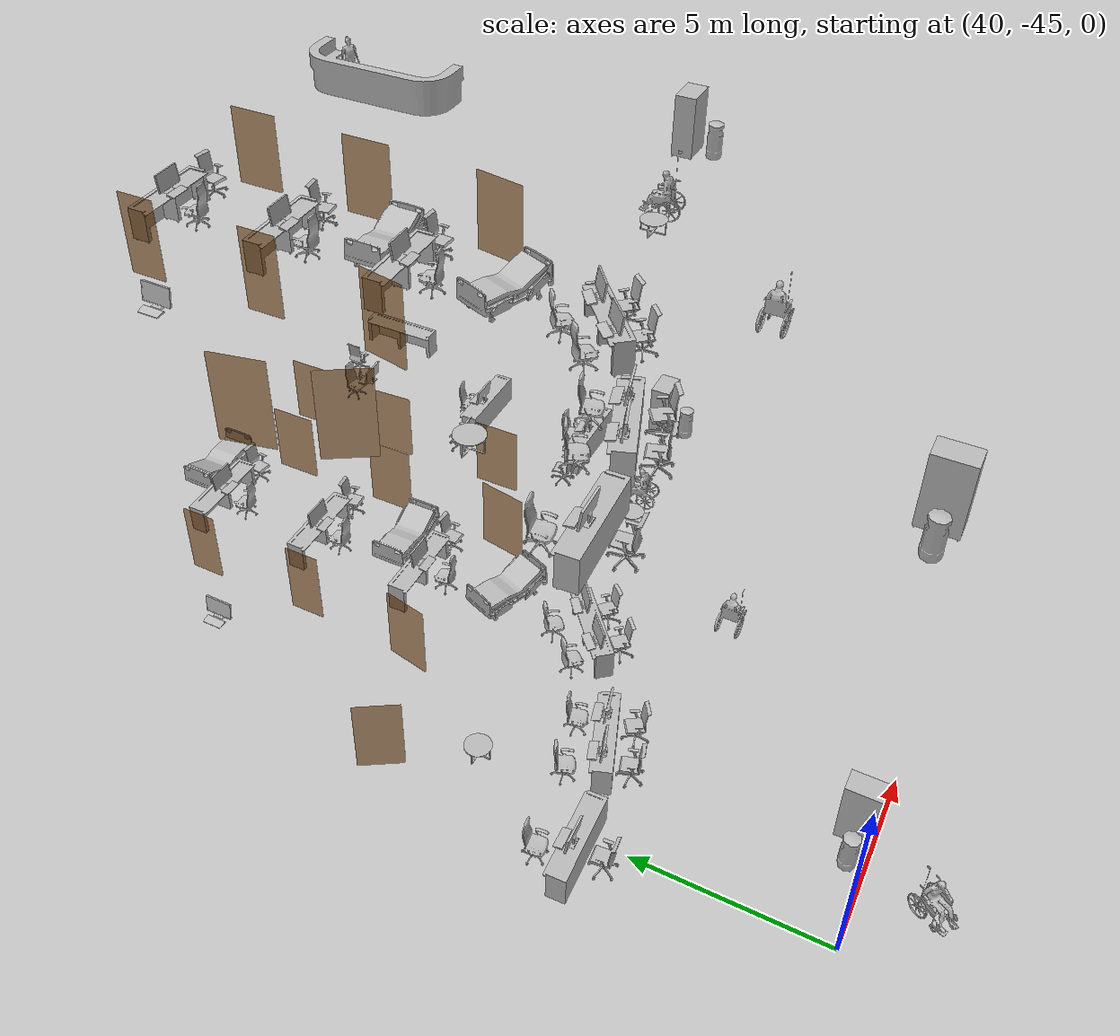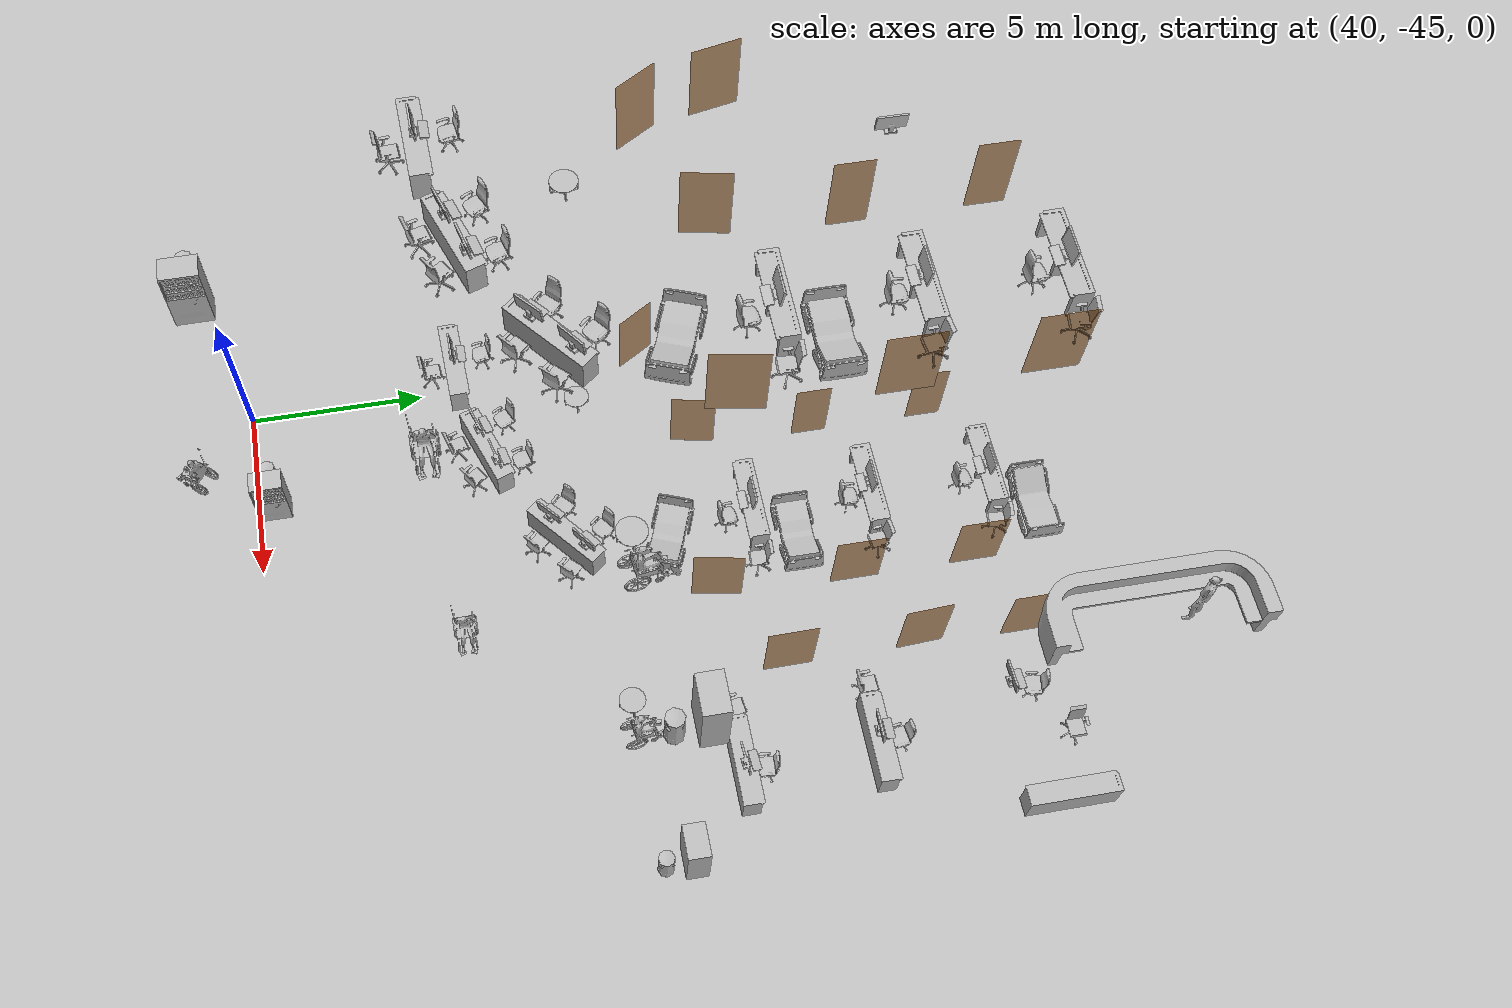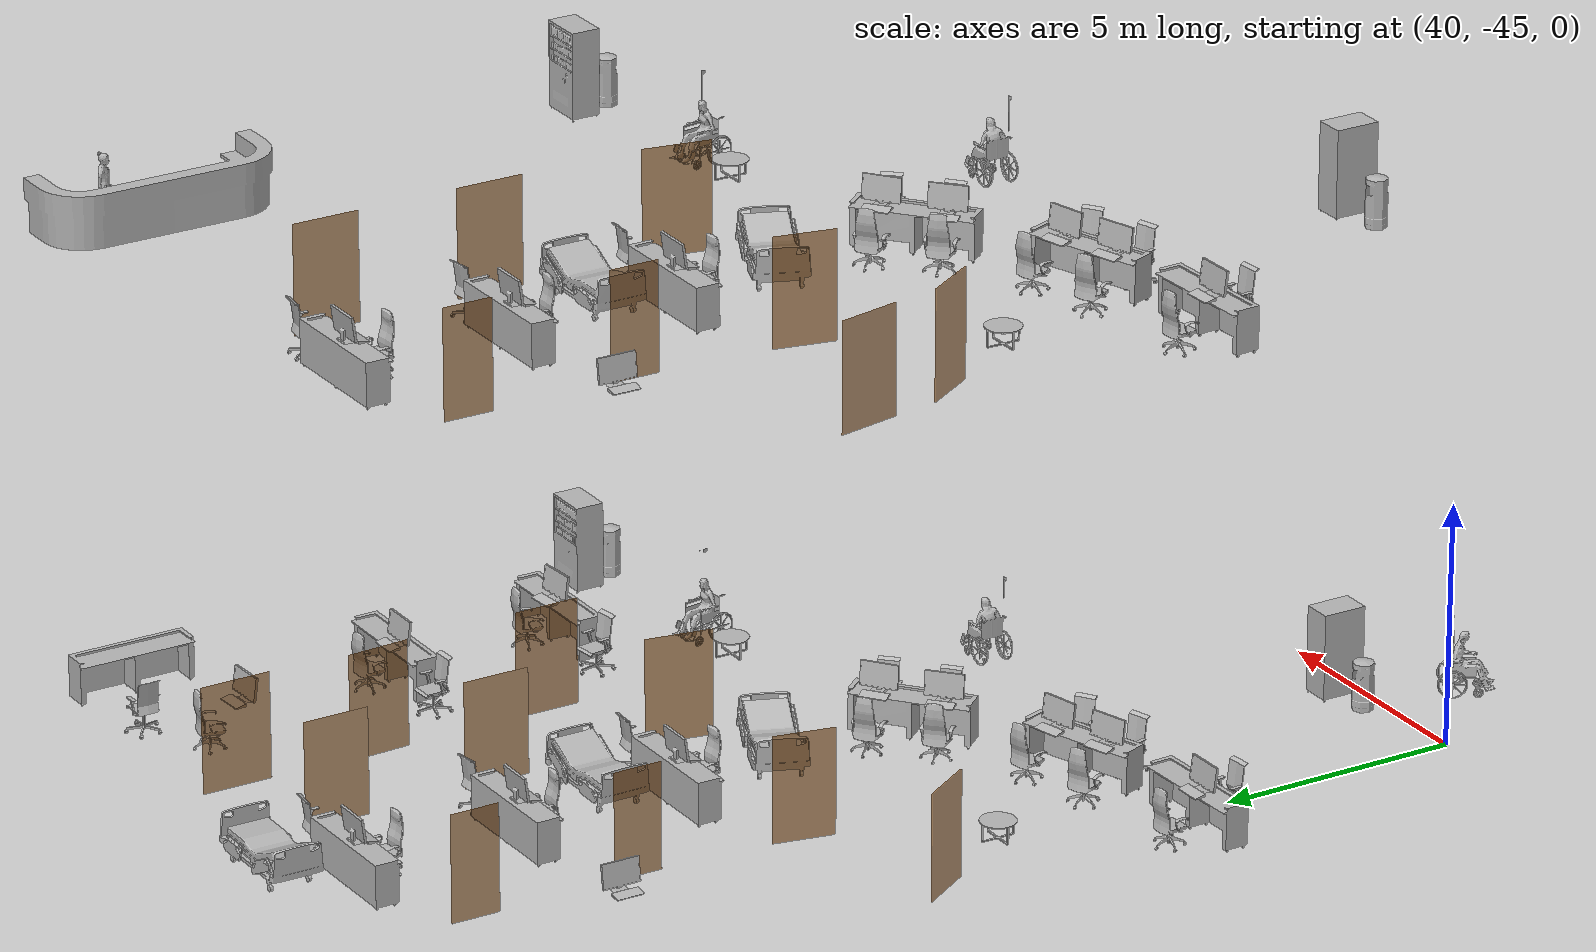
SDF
<sdf version="1.7">
 <world name="sim_world">
  <include>
   <name>OpenRobotics/CoffeeTable_2</name>
   <uri>model://CoffeeTable</uri>
   <pose>50.619145417483985 -35.45603246029002 0.0 0 0 1.5708</pose>
   <static>True</static>
  </include>
  <include>
   <name>OpenRobotics/CoffeeTable_3</name>
   <uri>model://CoffeeTable</uri>
   <pose>40.95399792315684 -35.49049267335875 0.0 0 0 1.5708</pose>
   <static>True</static>
  </include>
  <include>
   <name>OpenRobotics/CGMVanguard_6</name>
   <uri>model://CGMVanguard</uri>
   <pose>46.09093881004581 -33.67223183723706 0.0 0 0 2.7684</pose>
   <static>True</static>
  </include>
  <include>
   <name>OpenRobotics/CGMVanguard_7</name>
   <uri>model://CGMVanguard</uri>
   <pose>46.597019345409834 -30.06510903426794 0.0 0 0 3.1416</pose>
   <static>True</static>
  </include>
  <include>
   <name>OpenRobotics/CGMVanguard_8</name>
   <uri>model://CGMVanguard</uri>
   <pose>46.58625052882586 -23.184696742433005 0.0 0 0 -0.0029</pose>
   <static>True</static>
  </include>
  <include>
   <name>OpenRobotics/NurseTable_4</name>
   <uri>model://NurseTable</uri>
   <pose>42.41287642782974 -38.32261066882046 0.0 0 0 -2.8065</pose>
   <static>True</static>
  </include>
  <include>
   <name>OpenRobotics/NurseTable_5</name>
   <uri>model://NurseTable</uri>
   <pose>45.57325487481255 -36.488277373947184 0.0 0 0 -2.4507</pose>
   <static>True</static>
  </include>
  <include>
   <name>OpenRobotics/NurseTable_10</name>
   <uri>model://NurseTable</uri>
   <pose>45.42833352563367 -24.266101303796027 0.0 0 0 0.0072</pose>
   <static>True</static>
  </include>
  <include>
   <name>OpenRobotics/NurseTable_11</name>
   <uri>model://NurseTable</uri>
   <pose>45.48877350871124 -27.712607207415125 0.0 0 0 0.0098</pose>
   <static>True</static>
  </include>
  <include>
   <name>OpenRobotics/NurseTable_12</name>
   <uri>model://NurseTable</uri>
   <pose>45.413203338333176 -31.140859966924374 0.0 0 0 0.0034</pose>
   <static>True</static>
  </include>
  <include>
   <name>OpenRobotics/NurseTable_34</name>
   <uri>model://NurseTable</uri>
   <pose>52.92905657474717 -32.91938386985119 0.0 0 0 3.1416</pose>
   <static>True</static>
  </include>
  <include>
   <name>OpenRobotics/NurseTable_35</name>
   <uri>model://NurseTable</uri>
   <pose>52.90471904926738 -29.283239106188248 0.0 0 0 3.1416</pose>
   <static>True</static>
  </include>
  <include>
   <name>OpenRobotics/NurseTable_36</name>
   <uri>model://NurseTable</uri>
   <pose>55.15445944386759 -24.680296911657265 0.0 0 0 -1.5708</pose>
   <static>True</static>
  </include>
  <include>
   <name>OpenRobotics/NurseTable_40</name>
   <uri>model://NurseTable</uri>
   <pose>39.41238798507753 -38.948251990308094 0.0 0 0 -3.1045</pose>
   <static>True</static>
  </include>
  <include>
   <name>OpenRobotics/DeskChair_33</name>
   <uri>model://DeskChair</uri>
   <pose>45.560897657782434 -25.010738048536616 0.0 0 0 1.6647</pose>
   <static>True</static>
  </include>
  <include>
   <name>OpenRobotics/DeskChair_34</name>
   <uri>model://DeskChair</uri>
   <pose>45.59188492750283 -28.368885812084173 0.0 0 0 1.5708</pose>
   <static>True</static>
  </include>
  <include>
   <name>OpenRobotics/DeskChair_35</name>
   <uri>model://DeskChair</uri>
   <pose>45.6332371831853 -31.892388754278706 0.0 0 0 1.6796</pose>
   <static>True</static>
  </include>
  <include>
   <name>OpenRobotics/DeskChair_39</name>
   <uri>model://DeskChair</uri>
   <pose>39.040917657013225 -38.05072497211649 0.0 0 0 -1.4389</pose>
   <static>True</static>
  </include>
  <include>
   <name>OpenRobotics/DeskChair_40</name>
   <uri>model://DeskChair</uri>
   <pose>41.386446675127914 -37.668405061343826 0.0 0 0 -1.1243</pose>
   <static>True</static>
  </include>
  <include>
   <name>OpenRobotics/DeskChair_41</name>
   <uri>model://DeskChair</uri>
   <pose>42.83304872889508 -37.317099342333016 0.0 0 0 -1.3139</pose>
   <static>True</static>
  </include>
  <include>
   <name>OpenRobotics/DeskChair_42</name>
   <uri>model://DeskChair</uri>
   <pose>44.517291642629175 -36.3664820583824 0.0 0 0 -0.786</pose>
   <static>True</static>
  </include>
  <include>
   <name>OpenRobotics/DeskChair_43</name>
   <uri>model://DeskChair</uri>
   <pose>45.416245529018155 -35.38485058266993 0.0 0 0 -0.9053</pose>
   <static>True</static>
  </include>
  <include>
   <name>OpenRobotics/DeskChair_44</name>
   <uri>model://DeskChair</uri>
   <pose>53.06363986000543 -32.26894734817894 0.0 0 0 -1.6575</pose>
   <static>True</static>
  </include>
  <include>
   <name>OpenRobotics/DeskChair_45</name>
   <uri>model://DeskChair</uri>
   <pose>52.856986269758906 -28.629518095457893 0.0 0 0 -1.4394</pose>
   <static>True</static>
  </include>
  <include>
   <name>OpenRobotics/DeskChair_48</name>
   <uri>model://DeskChair</uri>
   <pose>52.04628283527561 -24.736860120764607 0.0 0 0 -1.7281</pose>
   <static>True</static>
  </include>
  <include>
   <name>OpenRobotics/OfficeChairGrey_6</name>
   <uri>model://OfficeChairGrey</uri>
   <pose>39.44014460982274 -39.483704472904925 0.0 0 0 -3.0604</pose>
   <static>True</static>
  </include>
  <include>
   <name>OpenRobotics/OfficeChairGrey_7</name>
   <uri>model://OfficeChairGrey</uri>
   <pose>42.04708665051348 -39.02888350448063 0.0 0 0 -2.8514</pose>
   <static>True</static>
  </include>
  <include>
   <name>OpenRobotics/OfficeChairGrey_8</name>
   <uri>model://OfficeChairGrey</uri>
   <pose>43.168605053651824 -38.666755124802926 0.0 0 0 -2.5536</pose>
   <static>True</static>
  </include>
  <include>
   <name>OpenRobotics/OfficeChairGrey_9</name>
   <uri>model://OfficeChairGrey</uri>
   <pose>45.541486865889816 -37.19848082766051 0.0 0 0 -2.4327</pose>
   <static>True</static>
  </include>
  <include>
   <name>OpenRobotics/OfficeChairGrey_10</name>
   <uri>model://OfficeChairGrey</uri>
   <pose>46.48443136802435 -36.41084958270839 0.0 0 0 -2.3371</pose>
   <static>True</static>
  </include>
  <include>
   <name>OpenRobotics/OfficeChairGrey_11</name>
   <uri>model://OfficeChairGrey</uri>
   <pose>53.49544248298147 -24.008457367024366 0.0 0 0 1.5708</pose>
   <static>True</static>
  </include>
  <include>
   <name>OpenRobotics/OfficeChairGrey_17</name>
   <uri>model://OfficeChairGrey</uri>
   <pose>47.03910618822357 -24.49658090073461 0.0 0 0 -0.1276</pose>
   <static>True</static>
  </include>
  <include>
   <name>OpenRobotics/OfficeChairGrey_18</name>
   <uri>model://OfficeChairGrey</uri>
   <pose>47.11674935579405 -27.946613591784956 0.0 0 0 0.1131</pose>
   <static>True</static>
  </include>
  <include>
   <name>OpenRobotics/OfficeChairGrey_19</name>
   <uri>model://OfficeChairGrey</uri>
   <pose>47.09456559363106 -31.37446252067231 0.0 0 0 -0.0522</pose>
   <static>True</static>
  </include>
  <include>
   <name>OpenRobotics/OfficeChairGrey_41</name>
   <uri>model://OfficeChairGrey</uri>
   <pose>51.27677012422603 -29.05593631014194 0.0 0 0 -3.1011</pose>
   <static>True</static>
  </include>
  <include>
   <name>OpenRobotics/OfficeChairGrey_42</name>
   <uri>model://OfficeChairGrey</uri>
   <pose>51.31004576747053 -32.6945579016192 0.0 0 0 -3.0151</pose>
   <static>True</static>
  </include>
  <include>
   <name>OpenRobotics/MonitorAndKeyboard</name>
   <uri>model://MonitorAndKeyboard</uri>
   <pose>39.23182185300569 -38.93086035152498 0.86 0 0 -1.5494</pose>
   <static>True</static>
  </include>
  <include>
   <name>OpenRobotics/MonitorAndKeyboard_2</name>
   <uri>model://MonitorAndKeyboard</uri>
   <pose>41.859440021537665 -38.49703857543944 0.86 0 0 -1.2654</pose>
   <static>True</static>
  </include>
  <include>
   <name>OpenRobotics/MonitorAndKeyboard_3</name>
   <uri>model://MonitorAndKeyboard</uri>
   <pose>42.968735817853194 -38.11280719972312 0.86 0 0 -1.3255</pose>
   <static>True</static>
  </include>
  <include>
   <name>OpenRobotics/MonitorAndKeyboard_4</name>
   <uri>model://MonitorAndKeyboard</uri>
   <pose>45.08198146225149 -36.867178185454435 0.86 0 0 -0.8439</pose>
   <static>True</static>
  </include>
  <include>
   <name>OpenRobotics/MonitorAndKeyboard_5</name>
   <uri>model://MonitorAndKeyboard</uri>
   <pose>46.092123379870046 -36.03674089458101 0.86 0 0 -0.922</pose>
   <static>True</static>
  </include>
  <include>
   <name>OpenRobotics/MonitorAndKeyboard_6</name>
   <uri>model://MonitorAndKeyboard</uri>
   <pose>53.01989154263302 -32.901319180031564 0.86 0 0 -1.498</pose>
   <static>True</static>
  </include>
  <include>
   <name>OpenRobotics/MonitorAndKeyboard_36</name>
   <uri>model://MonitorAndKeyboard</uri>
   <pose>45.421010730356564 -31.156474750971146 0.86 0 0 1.5708</pose>
   <static>True</static>
  </include>
  <include>
   <name>OpenRobotics/MonitorAndKeyboard_37</name>
   <uri>model://MonitorAndKeyboard</uri>
   <pose>45.44443290642671 -27.72057613168727 0.86 0 0 1.5708</pose>
   <static>True</static>
  </include>
  <include>
   <name>OpenRobotics/MonitorAndKeyboard_40</name>
   <uri>model://MonitorAndKeyboard</uri>
   <pose>45.4619860774586 -24.278350832660305 0.86 0 0 1.5708</pose>
   <static>True</static>
  </include>
  <include>
   <name>OpenRobotics/MonitorAndKeyboard_47</name>
   <uri>model://MonitorAndKeyboard</uri>
   <pose>51.99060805353645 -25.493450251913412 0.86 0 0 -1.5242</pose>
   <static>True</static>
  </include>
  <include>
   <name>OpenRobotics/MonitorAndKeyboard_48</name>
   <uri>model://MonitorAndKeyboard</uri>
   <pose>52.74224452905662 -29.265847467405123 0.86 0 0 -1.5708</pose>
   <static>True</static>
  </include>
  <include>
   <name>OpenRobotics/MonitorAndKeyboard_49</name>
   <uri>model://MonitorAndKeyboard</uri>
   <pose>41.173331794931 -27.45496327064346 0.86 0 0 0.0</pose>
   <static>True</static>
  </include>
  <include>
   <name>OpenRobotics/VendingMachine_4</name>
   <uri>model://VendingMachine</uri>
   <pose>43.08054305603634 -44.52283758316992 0.0 0 0 1.5708</pose>
   <static>True</static>
  </include>
  <include>
   <name>OpenRobotics/VendingMachine_5</name>
   <uri>model://VendingMachine</uri>
   <pose>55.087046652051896 -34.60055767085884 0.0 0 0 3.1416</pose>
   <static>True</static>
  </include>
  <include>
   <name>OpenRobotics/LitterBin_4</name>
   <uri>model://LitterBin</uri>
   <pose>42.18627360486139 -44.567582016076344 0.0 0 0 1.5708</pose>
   <static>True</static>
  </include>
  <include>
   <name>OpenRobotics/LitterBin_5</name>
   <uri>model://LitterBin</uri>
   <pose>55.165605169032006 -35.35561324564443 0.0 0 0 1.5708</pose>
   <static>True</static>
  </include>
  <include>
   <name>OpenRobotics/PatientWheelChair_4</name>
   <uri>model://PatientWheelChair</uri>
   <pose>47.959678473904894 -39.609699626937456 0.0 0 0 1.5708</pose>
   <static>True</static>
  </include>
  <include>
   <name>OpenRobotics/PatientWheelChair_5</name>
   <uri>model://PatientWheelChair</uri>
   <pose>51.517749317333994 -35.305242106072875 0.0 0 0 -3.0041</pose>
   <static>True</static>
  </include>
  <include>
   <name>OpenRobotics/PatientWheelChair_8</name>
   <uri>model://PatientWheelChair</uri>
   <pose>41.75433637167805 -46.68384292911815 0.0 0 0 -0.593</pose>
   <static>True</static>
  </include>
  <model name="L1_right_consult_rm_4_outer">
   <pose>47.92979500788435 -25.260170762662995 0.0 0 0 1.5707963267948966</pose>
   <static>true</static>
   <link name="right">
    <pose>0 0 1.11 0 0 0</pose>
    <visual name="right_visual">
     <geometry><box><size>1.3501553786392877 0.03 2.2</size></box></geometry>
     <material>
      <ambient>0.5 0.25 0 0.6</ambient>
      <diffuse>0.5 0.25 0 0.6</diffuse>
      <pbr><metal><metalness>0.0</metalness></metal></pbr>
     </material>
    </visual>
    <collision name="right_collision">
     <geometry><box><size>1.3501553786392877 0.03 2.2</size></box></geometry>
     <surface><contact><collide_bitmask>0x02</collide_bitmask></contact></surface>
    </collision>
    <inertial>
     <mass>50.0</mass>
     <inertia><ixx>20.17041666666667</ixx><iyy>27.762164776952496</iyy><izz>7.599248110285827</izz></inertia>
    </inertial>
   </link>
   <joint name="right_joint" type="prismatic">
    <parent>world</parent>
    <child>right</child>
    <axis>
     <xyz>1 0 0</xyz>
     <limit><lower>0.0</lower><upper>1.3601553786392877</upper><effort>500.0</effort></limit>
    </axis>
   </joint>
  </model>
  <model name="L1_right_consult_rm_5_outer">
   <pose>47.92979500788435 -28.691694550209633 0.0 0 0 1.5707963267948966</pose>
   <static>true</static>
   <link name="right">
    <pose>0 0 1.11 0 0 0</pose>
    <visual name="right_visual">
     <geometry><box><size>1.3734967885850524 0.03 2.2</size></box></geometry>
     <material>
      <ambient>0.5 0.25 0 0.6</ambient>
      <diffuse>0.5 0.25 0 0.6</diffuse>
      <pbr><metal><metalness>0.0</metalness></metal></pbr>
     </material>
    </visual>
    <collision name="right_collision">
     <geometry><box><size>1.3734967885850524 0.03 2.2</size></box></geometry>
     <surface><contact><collide_bitmask>0x02</collide_bitmask></contact></surface>
    </collision>
    <inertial>
     <mass>50.0</mass>
     <inertia><ixx>20.17041666666667</ixx><iyy>28.027055951056056</iyy><izz>7.864139284389385</izz></inertia>
    </inertial>
   </link>
   <joint name="right_joint" type="prismatic">
    <parent>world</parent>
    <child>right</child>
    <axis>
     <xyz>1 0 0</xyz>
     <limit><lower>0.0</lower><upper>1.3834967885850524</upper><effort>500.0</effort></limit>
    </axis>
   </joint>
  </model>
  <model name="L1_right_consult_rm_6_outer">
   <pose>47.7432521826084 -32.589575400946146 0.0 0 0 1.3919487051964479</pose>
   <static>true</static>
   <link name="right">
    <pose>0 0 1.11 0 0 0</pose>
    <visual name="right_visual">
     <geometry><box><size>1.3880429351730292 0.03 2.2</size></box></geometry>
     <material>
      <ambient>0.5 0.25 0 0.6</ambient>
      <diffuse>0.5 0.25 0 0.6</diffuse>
      <pbr><metal><metalness>0.0</metalness></metal></pbr>
     </material>
    </visual>
    <collision name="right_collision">
     <geometry><box><size>1.3880429351730292 0.03 2.2</size></box></geometry>
     <surface><contact><collide_bitmask>0x02</collide_bitmask></contact></surface>
    </collision>
    <inertial>
     <mass>50.0</mass>
     <inertia><ixx>20.17041666666667</ixx><iyy>28.194429957848996</iyy><izz>8.031513291182327</izz></inertia>
    </inertial>
   </link>
   <joint name="right_joint" type="prismatic">
    <parent>world</parent>
    <child>right</child>
    <axis>
     <xyz>1 0 0</xyz>
     <limit><lower>0.0</lower><upper>1.3980429351730292</upper><effort>500.0</effort></limit>
    </axis>
   </joint>
  </model>
  <model name="L1_right_counsel">
   <pose>50.26705895927084 -24.383629475789412 0.0 0 0 1.5707224510909026</pose>
   <static>true</static>
   <link name="right">
    <pose>0 0 1.11 0 0 0</pose>
    <visual name="right_visual">
     <geometry><box><size>1.4476939388264292 0.03 2.2</size></box></geometry>
     <material>
      <ambient>0.5 0.25 0 0.6</ambient>
      <diffuse>0.5 0.25 0 0.6</diffuse>
      <pbr><metal><metalness>0.0</metalness></metal></pbr>
     </material>
    </visual>
    <collision name="right_collision">
     <geometry><box><size>1.4476939388264292 0.03 2.2</size></box></geometry>
     <surface><contact><collide_bitmask>0x02</collide_bitmask></contact></surface>
    </collision>
    <inertial>
     <mass>50.0</mass>
     <inertia><ixx>20.17041666666667</ixx><iyy>28.89924058547826</iyy><izz>8.736323918811587</izz></inertia>
    </inertial>
   </link>
   <joint name="right_joint" type="prismatic">
    <parent>world</parent>
    <child>right</child>
    <axis>
     <xyz>1 0 0</xyz>
     <limit><lower>0.0</lower><upper>1.4576939388264292</upper><effort>500.0</effort></limit>
    </axis>
   </joint>
  </model>
  <model name="L1_right_consult">
   <pose>50.16296488596596 -27.391548401984565 0.0 0 0 1.6204880391072638</pose>
   <static>true</static>
   <link name="right">
    <pose>0 0 1.11 0 0 0</pose>
    <visual name="right_visual">
     <geometry><box><size>1.295688480855341 0.03 2.2</size></box></geometry>
     <material>
      <ambient>0.5 0.25 0 0.6</ambient>
      <diffuse>0.5 0.25 0 0.6</diffuse>
      <pbr><metal><metalness>0.0</metalness></metal></pbr>
     </material>
    </visual>
    <collision name="right_collision">
     <geometry><box><size>1.295688480855341 0.03 2.2</size></box></geometry>
     <surface><contact><collide_bitmask>0x02</collide_bitmask></contact></surface>
    </collision>
    <inertial>
     <mass>50.0</mass>
     <inertia><ixx>20.17041666666667</ixx><iyy>27.161702664255095</iyy><izz>6.998785997588423</izz></inertia>
    </inertial>
   </link>
   <joint name="right_joint" type="prismatic">
    <parent>world</parent>
    <child>right</child>
    <axis>
     <xyz>1 0 0</xyz>
     <limit><lower>0.0</lower><upper>1.305688480855341</upper><effort>500.0</effort></limit>
    </axis>
   </joint>
  </model>
  <model name="L1_right_negative_air_pressure">
   <pose>50.19877120110769 -31.08472751048039 0.0 0 0 1.5757255877355163</pose>
   <link name="right">
    <pose>0 0 1.11 0 0 0</pose>
    <visual name="right_visual">
     <geometry><box><size>1.3608870057478686 0.03 2.2</size></box></geometry>
     <material>
      <ambient>0.5 0.25 0 0.6</ambient>
      <diffuse>0.5 0.25 0 0.6</diffuse>
      <pbr><metal><metalness>0.0</metalness></metal></pbr>
     </material>
    </visual>
    <collision name="right_collision">
     <geometry><box><size>1.3608870057478686 0.03 2.2</size></box></geometry>
     <surface><contact><collide_bitmask>0x02</collide_bitmask></contact></surface>
    </collision>
    <inertial>
     <mass>50.0</mass>
     <inertia><ixx>20.17041666666667</ixx><iyy>27.88338934338917</iyy><izz>7.720472676722498</izz></inertia>
    </inertial>
   </link>
   <joint name="right_joint" type="prismatic">
    <parent>world</parent>
    <child>right</child>
    <axis>
     <xyz>1 0 0</xyz>
     <limit><lower>0.0</lower><upper>1.3708870057478686</upper><effort>500.0</effort></limit>
    </axis>
   </joint>
   <plugin name="door" filename="libdoor.so">
    <v_max_door>0.2</v_max_door>
    <a_max_door>0.2</a_max_door>
    <a_nom_door>0.08</a_nom_door>
    <dx_min_door>0.001</dx_min_door>
    <f_max_door>100.0</f_max_door>
    <door name="L1_right_negative_air_pressure" type="SlidingDoor" left_joint_name="empty_joint" right_joint_name="right_joint"/>
   </plugin>
  </model>
  <model name="L1_right_consult_rm_6_inner">
   <pose>42.77321449175035 -32.35855736317837 0.0 0 0 -1.7708903021050455</pose>
   <static>true</static>
   <link name="left">
    <pose>0 0 1.11 0 0 0</pose>
    <visual name="left_visual">
     <geometry><box><size>1.2500822463848362 0.03 2.2</size></box></geometry>
     <material>
      <ambient>0.5 0.25 0 0.6</ambient>
      <diffuse>0.5 0.25 0 0.6</diffuse>
      <pbr><metal><metalness>0.0</metalness></metal></pbr>
     </material>
    </visual>
    <collision name="left_collision">
     <geometry><box><size>1.2500822463848362 0.03 2.2</size></box></geometry>
     <surface><contact><collide_bitmask>0x02</collide_bitmask></contact></surface>
    </collision>
    <inertial>
     <mass>50.0</mass>
     <inertia><ixx>20.17041666666667</ixx><iyy>26.677940094693998</iyy><izz>6.515023428027327</izz></inertia>
    </inertial>
   </link>
   <joint name="left_joint" type="revolute">
    <parent>world</parent>
    <child>left</child>
    <axis><xyz>0 0 1</xyz><limit><lower>-1.57</lower><upper>0</upper></limit></axis>
    <pose>0.6300411231924181 0 0 0 0 0</pose>
   </joint>
  </model>
  <model name="L1_right_consult_rm_7_inner">
   <pose>39.589911926464396 -33.49505788238917 0.0 0 0 2.12630436733766</pose>
   <static>true</static>
   <link name="left">
    <pose>0 0 1.11 0 0 0</pose>
    <visual name="left_visual">
     <geometry><box><size>1.2030296841661985 0.03 2.2</size></box></geometry>
     <material>
      <ambient>0.5 0.25 0 0.6</ambient>
      <diffuse>0.5 0.25 0 0.6</diffuse>
      <pbr><metal><metalness>0.0</metalness></metal></pbr>
     </material>
    </visual>
    <collision name="left_collision">
     <geometry><box><size>1.2030296841661985 0.03 2.2</size></box></geometry>
     <surface><contact><collide_bitmask>0x02</collide_bitmask></contact></surface>
    </collision>
    <inertial>
     <mass>50.0</mass>
     <inertia><ixx>20.17041666666667</ixx><iyy>26.197001754104267</iyy><izz>6.034085087437597</izz></inertia>
    </inertial>
   </link>
   <joint name="left_joint" type="revolute">
    <parent>world</parent>
    <child>left</child>
    <axis><xyz>0 0 1</xyz><limit><lower>-1.57</lower><upper>0</upper></limit></axis>
    <pose>0.6065148420830992 0 0 0 0 0</pose>
   </joint>
  </model>
  <model name="L1_right_consult_rm_5_inner">
   <pose>43.04524825968236 -28.930062305295976 0.0 0 0 -1.5707963267948966</pose>
   <static>true</static>
   <link name="right">
    <pose>0 0 1.11 0 0 0</pose>
    <visual name="right_visual">
     <geometry><box><size>1.0004111380331595 0.03 2.2</size></box></geometry>
     <material>
      <ambient>0.5 0.25 0 0.6</ambient>
      <diffuse>0.5 0.25 0 0.6</diffuse>
      <pbr><metal><metalness>0.0</metalness></metal></pbr>
     </material>
    </visual>
    <collision name="right_collision">
     <geometry><box><size>1.0004111380331595 0.03 2.2</size></box></geometry>
     <surface><contact><collide_bitmask>0x02</collide_bitmask></contact></surface>
    </collision>
    <inertial>
     <mass>50.0</mass>
     <inertia><ixx>20.17041666666667</ixx><iyy>24.33676018792001</iyy><izz>4.173843521253339</izz></inertia>
    </inertial>
   </link>
   <joint name="right_joint" type="prismatic">
    <parent>world</parent>
    <child>right</child>
    <axis>
     <xyz>1 0 0</xyz>
     <limit><lower>0.0</lower><upper>1.0104111380331595</upper><effort>500.0</effort></limit>
    </axis>
   </joint>
  </model>
  <model name="L1_right_consult_rm_4_inner">
   <pose>43.04524825968236 -25.4842832967963 0.0 0 0 -1.5707963267948966</pose>
   <static>true</static>
   <link name="right">
    <pose>0 0 1.11 0 0 0</pose>
    <visual name="right_visual">
     <geometry><box><size>1.0004111380331524 0.03 2.2</size></box></geometry>
     <material>
      <ambient>0.5 0.25 0 0.6</ambient>
      <diffuse>0.5 0.25 0 0.6</diffuse>
      <pbr><metal><metalness>0.0</metalness></metal></pbr>
     </material>
    </visual>
    <collision name="right_collision">
     <geometry><box><size>1.0004111380331524 0.03 2.2</size></box></geometry>
     <surface><contact><collide_bitmask>0x02</collide_bitmask></contact></surface>
    </collision>
    <inertial>
     <mass>50.0</mass>
     <inertia><ixx>20.17041666666667</ixx><iyy>24.33676018791995</iyy><izz>4.17384352125328</izz></inertia>
    </inertial>
   </link>
   <joint name="right_joint" type="prismatic">
    <parent>world</parent>
    <child>right</child>
    <axis>
     <xyz>1 0 0</xyz>
     <limit><lower>0.0</lower><upper>1.0104111380331524</upper><effort>500.0</effort></limit>
    </axis>
   </joint>
  </model>
  <include>
   <name>OpenRobotics/CoffeeTable_5</name>
   <uri>model://CoffeeTable</uri>
   <pose>50.619145417483985 -35.45603246029002 10.0 0 0 1.5708</pose>
   <static>True</static>
  </include>
  <include>
   <name>OpenRobotics/CoffeeTable_6</name>
   <uri>model://CoffeeTable</uri>
   <pose>40.95399792315684 -35.49049267335875 10.0 0 0 1.5708</pose>
   <static>True</static>
  </include>
  <include>
   <name>OpenRobotics/CGMVanguard_26</name>
   <uri>model://CGMVanguard</uri>
   <pose>46.09093881004581 -33.67223183723706 10.0 0 0 2.7684</pose>
   <static>True</static>
  </include>
  <include>
   <name>OpenRobotics/CGMVanguard_27</name>
   <uri>model://CGMVanguard</uri>
   <pose>46.597019345409834 -30.06510903426794 10.0 0 0 3.1416</pose>
   <static>True</static>
  </include>
  <include>
   <name>OpenRobotics/NurseTable_47</name>
   <uri>model://NurseTable</uri>
   <pose>42.41287642782974 -38.32261066882046 10.0 0 0 -2.8065</pose>
   <static>True</static>
  </include>
  <include>
   <name>OpenRobotics/NurseTable_48</name>
   <uri>model://NurseTable</uri>
   <pose>45.57325487481255 -36.488277373947184 10.0 0 0 -2.4507</pose>
   <static>True</static>
  </include>
  <include>
   <name>OpenRobotics/NurseTable_52</name>
   <uri>model://NurseTable</uri>
   <pose>45.42833352563367 -24.266101303796027 10.0 0 0 0.0072</pose>
   <static>True</static>
  </include>
  <include>
   <name>OpenRobotics/NurseTable_53</name>
   <uri>model://NurseTable</uri>
   <pose>45.48877350871124 -27.712607207415125 10.0 0 0 0.0098</pose>
   <static>True</static>
  </include>
  <include>
   <name>OpenRobotics/NurseTable_54</name>
   <uri>model://NurseTable</uri>
   <pose>45.413203338333176 -31.140859966924374 10.0 0 0 0.0034</pose>
   <static>True</static>
  </include>
  <include>
   <name>OpenRobotics/NurseTable_76</name>
   <uri>model://NurseTable</uri>
   <pose>39.41238798507753 -38.948251990308094 10.0 0 0 -3.1045</pose>
   <static>True</static>
  </include>
  <include>
   <name>OpenRobotics/DeskChair_73</name>
   <uri>model://DeskChair</uri>
   <pose>45.560897657782434 -25.010738048536616 10.0 0 0 1.6647</pose>
   <static>True</static>
  </include>
  <include>
   <name>OpenRobotics/DeskChair_74</name>
   <uri>model://DeskChair</uri>
   <pose>45.59188492750283 -28.368885812084173 10.0 0 0 1.5708</pose>
   <static>True</static>
  </include>
  <include>
   <name>OpenRobotics/DeskChair_75</name>
   <uri>model://DeskChair</uri>
   <pose>45.6332371831853 -31.892388754278706 10.0 0 0 1.6796</pose>
   <static>True</static>
  </include>
  <include>
   <name>OpenRobotics/DeskChair_79</name>
   <uri>model://DeskChair</uri>
   <pose>39.040917657013225 -38.05072497211649 10.0 0 0 -1.4389</pose>
   <static>True</static>
  </include>
  <include>
   <name>OpenRobotics/DeskChair_80</name>
   <uri>model://DeskChair</uri>
   <pose>41.386446675127914 -37.668405061343826 10.0 0 0 -1.1243</pose>
   <static>True</static>
  </include>
  <include>
   <name>OpenRobotics/DeskChair_81</name>
   <uri>model://DeskChair</uri>
   <pose>42.83304872889508 -37.317099342333016 10.0 0 0 -1.3139</pose>
   <static>True</static>
  </include>
  <include>
   <name>OpenRobotics/DeskChair_82</name>
   <uri>model://DeskChair</uri>
   <pose>44.517291642629175 -36.3664820583824 10.0 0 0 -0.786</pose>
   <static>True</static>
  </include>
  <include>
   <name>OpenRobotics/DeskChair_83</name>
   <uri>model://DeskChair</uri>
   <pose>45.416245529018155 -35.38485058266993 10.0 0 0 -0.9053</pose>
   <static>True</static>
  </include>
  <include>
   <name>OpenRobotics/OfficeChairGrey_54</name>
   <uri>model://OfficeChairGrey</uri>
   <pose>39.44014460982274 -39.483704472904925 10.0 0 0 -3.0604</pose>
   <static>True</static>
  </include>
  <include>
   <name>OpenRobotics/OfficeChairGrey_55</name>
   <uri>model://OfficeChairGrey</uri>
   <pose>42.04708665051348 -39.02888350448063 10.0 0 0 -2.8514</pose>
   <static>True</static>
  </include>
  <include>
   <name>OpenRobotics/OfficeChairGrey_56</name>
   <uri>model://OfficeChairGrey</uri>
   <pose>43.168605053651824 -38.666755124802926 10.0 0 0 -2.5536</pose>
   <static>True</static>
  </include>
  <include>
   <name>OpenRobotics/OfficeChairGrey_57</name>
   <uri>model://OfficeChairGrey</uri>
   <pose>45.541486865889816 -37.19848082766051 10.0 0 0 -2.4327</pose>
   <static>True</static>
  </include>
  <include>
   <name>OpenRobotics/OfficeChairGrey_58</name>
   <uri>model://OfficeChairGrey</uri>
   <pose>46.48443136802435 -36.41084958270839 10.0 0 0 -2.3371</pose>
   <static>True</static>
  </include>
  <include>
   <name>OpenRobotics/OfficeChairGrey_62</name>
   <uri>model://OfficeChairGrey</uri>
   <pose>47.03910618822357 -24.49658090073461 10.0 0 0 -0.1276</pose>
   <static>True</static>
  </include>
  <include>
   <name>OpenRobotics/OfficeChairGrey_63</name>
   <uri>model://OfficeChairGrey</uri>
   <pose>47.11674935579405 -27.946613591784956 10.0 0 0 0.1131</pose>
   <static>True</static>
  </include>
  <include>
   <name>OpenRobotics/OfficeChairGrey_64</name>
   <uri>model://OfficeChairGrey</uri>
   <pose>47.09456559363106 -31.37446252067231 10.0 0 0 -0.0522</pose>
   <static>True</static>
  </include>
  <include>
   <name>OpenRobotics/MonitorAndKeyboard_53</name>
   <uri>model://MonitorAndKeyboard</uri>
   <pose>39.23182185300569 -38.93086035152498 10.86 0 0 -1.5494</pose>
   <static>True</static>
  </include>
  <include>
   <name>OpenRobotics/MonitorAndKeyboard_54</name>
   <uri>model://MonitorAndKeyboard</uri>
   <pose>41.859440021537665 -38.49703857543944 10.86 0 0 -1.2654</pose>
   <static>True</static>
  </include>
  <include>
   <name>OpenRobotics/MonitorAndKeyboard_55</name>
   <uri>model://MonitorAndKeyboard</uri>
   <pose>42.968735817853194 -38.11280719972312 10.86 0 0 -1.3255</pose>
   <static>True</static>
  </include>
  <include>
   <name>OpenRobotics/MonitorAndKeyboard_56</name>
   <uri>model://MonitorAndKeyboard</uri>
   <pose>45.08198146225149 -36.867178185454435 10.86 0 0 -0.8439</pose>
   <static>True</static>
  </include>
  <include>
   <name>OpenRobotics/MonitorAndKeyboard_57</name>
   <uri>model://MonitorAndKeyboard</uri>
   <pose>46.092123379870046 -36.03674089458101 10.86 0 0 -0.922</pose>
   <static>True</static>
  </include>
  <include>
   <name>OpenRobotics/MonitorAndKeyboard_79</name>
   <uri>model://MonitorAndKeyboard</uri>
   <pose>45.421010730356564 -31.156474750971146 10.86 0 0 1.5708</pose>
   <static>True</static>
  </include>
  <include>
   <name>OpenRobotics/MonitorAndKeyboard_80</name>
   <uri>model://MonitorAndKeyboard</uri>
   <pose>45.44443290642671 -27.72057613168727 10.86 0 0 1.5708</pose>
   <static>True</static>
  </include>
  <include>
   <name>OpenRobotics/MonitorAndKeyboard_83</name>
   <uri>model://MonitorAndKeyboard</uri>
   <pose>45.4619860774586 -24.278350832660305 10.86 0 0 1.5708</pose>
   <static>True</static>
  </include>
  <include>
   <name>OpenRobotics/MonitorAndKeyboard_89</name>
   <uri>model://MonitorAndKeyboard</uri>
   <pose>41.173331794931 -27.45496327064346 10.86 0 0 0.0</pose>
   <static>True</static>
  </include>
  <include>
   <name>OpenRobotics/VendingMachine_10</name>
   <uri>model://VendingMachine</uri>
   <pose>43.08054305603634 -44.52283758316992 10.0 0 0 1.5708</pose>
   <static>True</static>
  </include>
  <include>
   <name>OpenRobotics/VendingMachine_11</name>
   <uri>model://VendingMachine</uri>
   <pose>55.087046652051896 -34.60055767085884 10.0 0 0 3.1416</pose>
   <static>True</static>
  </include>
  <include>
   <name>OpenRobotics/LitterBin_14</name>
   <uri>model://LitterBin</uri>
   <pose>42.18627360486139 -44.567582016076344 10.0 0 0 1.5708</pose>
   <static>True</static>
  </include>
  <include>
   <name>OpenRobotics/LitterBin_15</name>
   <uri>model://LitterBin</uri>
   <pose>55.165605169032006 -35.35561324564443 10.0 0 0 1.5708</pose>
   <static>True</static>
  </include>
  <include>
   <name>OpenRobotics/PatientWheelChair_11</name>
   <uri>model://PatientWheelChair</uri>
   <pose>47.959678473904894 -39.609699626937456 10.0 0 0 1.5708</pose>
   <static>True</static>
  </include>
  <include>
   <name>OpenRobotics/PatientWheelChair_12</name>
   <uri>model://PatientWheelChair</uri>
   <pose>51.517749317333994 -35.305242106072875 10.0 0 0 -3.0041</pose>
   <static>True</static>
  </include>
  <include>
   <name>OpenRobotics/NurseDesk_4</name>
   <uri>model://NurseDesk</uri>
   <pose>53.8947232798739 -25.074139456174784 10.0 0 0 -1.5708</pose>
   <static>True</static>
  </include>
  <include>
   <name>OpenRobotics/Scrubs_13</name>
   <uri>model://Scrubs</uri>
   <pose>54.304315218645485 -24.002346063612958 10.0 0 0 -2.1881</pose>
   <static>True</static>
  </include>
  <model name="L2_right_consult_rm_4_outer">
   <pose>47.92979500788435 -25.260170762662995 10.0 0 0 1.5707963267948966</pose>
   <static>true</static>
   <link name="right">
    <pose>0 0 1.11 0 0 0</pose>
    <visual name="right_visual">
     <geometry><box><size>1.3501553786392877 0.03 2.2</size></box></geometry>
     <material>
      <ambient>0.5 0.25 0 0.6</ambient>
      <diffuse>0.5 0.25 0 0.6</diffuse>
      <pbr><metal><metalness>0.0</metalness></metal></pbr>
     </material>
    </visual>
    <collision name="right_collision">
     <geometry><box><size>1.3501553786392877 0.03 2.2</size></box></geometry>
     <surface><contact><collide_bitmask>0x02</collide_bitmask></contact></surface>
    </collision>
    <inertial>
     <mass>50.0</mass>
     <inertia><ixx>20.17041666666667</ixx><iyy>27.762164776952496</iyy><izz>7.599248110285827</izz></inertia>
    </inertial>
   </link>
   <joint name="right_joint" type="prismatic">
    <parent>world</parent>
    <child>right</child>
    <axis>
     <xyz>1 0 0</xyz>
     <limit><lower>0.0</lower><upper>1.3601553786392877</upper><effort>500.0</effort></limit>
    </axis>
   </joint>
  </model>
  <model name="L2_right_consult_rm_5_outer">
   <pose>47.92979500788435 -28.691694550209633 10.0 0 0 1.5707963267948966</pose>
   <static>true</static>
   <link name="right">
    <pose>0 0 1.11 0 0 0</pose>
    <visual name="right_visual">
     <geometry><box><size>1.3734967885850524 0.03 2.2</size></box></geometry>
     <material>
      <ambient>0.5 0.25 0 0.6</ambient>
      <diffuse>0.5 0.25 0 0.6</diffuse>
      <pbr><metal><metalness>0.0</metalness></metal></pbr>
     </material>
    </visual>
    <collision name="right_collision">
     <geometry><box><size>1.3734967885850524 0.03 2.2</size></box></geometry>
     <surface><contact><collide_bitmask>0x02</collide_bitmask></contact></surface>
    </collision>
    <inertial>
     <mass>50.0</mass>
     <inertia><ixx>20.17041666666667</ixx><iyy>28.027055951056056</iyy><izz>7.864139284389385</izz></inertia>
    </inertial>
   </link>
   <joint name="right_joint" type="prismatic">
    <parent>world</parent>
    <child>right</child>
    <axis>
     <xyz>1 0 0</xyz>
     <limit><lower>0.0</lower><upper>1.3834967885850524</upper><effort>500.0</effort></limit>
    </axis>
   </joint>
  </model>
  <model name="L2_right_consult_rm_6_outer">
   <pose>47.7432521826084 -32.589575400946146 10.0 0 0 1.3919487051964479</pose>
   <static>true</static>
   <link name="right">
    <pose>0 0 1.11 0 0 0</pose>
    <visual name="right_visual">
     <geometry><box><size>1.3880429351730292 0.03 2.2</size></box></geometry>
     <material>
      <ambient>0.5 0.25 0 0.6</ambient>
      <diffuse>0.5 0.25 0 0.6</diffuse>
      <pbr><metal><metalness>0.0</metalness></metal></pbr>
     </material>
    </visual>
    <collision name="right_collision">
     <geometry><box><size>1.3880429351730292 0.03 2.2</size></box></geometry>
     <surface><contact><collide_bitmask>0x02</collide_bitmask></contact></surface>
    </collision>
    <inertial>
     <mass>50.0</mass>
     <inertia><ixx>20.17041666666667</ixx><iyy>28.194429957848996</iyy><izz>8.031513291182327</izz></inertia>
    </inertial>
   </link>
   <joint name="right_joint" type="prismatic">
    <parent>world</parent>
    <child>right</child>
    <axis>
     <xyz>1 0 0</xyz>
     <limit><lower>0.0</lower><upper>1.3980429351730292</upper><effort>500.0</effort></limit>
    </axis>
   </joint>
  </model>
  <model name="L2_right_consult_rm_8_inner">
   <pose>38.98574093304107 -31.404170993423357 10.0 0 0 1.771758447609014</pose>
   <static>true</static>
   <link name="left">
    <pose>0 0 1.11 0 0 0</pose>
    <visual name="left_visual">
     <geometry><box><size>1.2956932791881277 0.03 2.2</size></box></geometry>
     <material>
      <ambient>0.5 0.25 0 0.6</ambient>
      <diffuse>0.5 0.25 0 0.6</diffuse>
      <pbr><metal><metalness>0.0</metalness></metal></pbr>
     </material>
    </visual>
    <collision name="left_collision">
     <geometry><box><size>1.2956932791881277 0.03 2.2</size></box></geometry>
     <surface><contact><collide_bitmask>0x02</collide_bitmask></contact></surface>
    </collision>
    <inertial>
     <mass>50.0</mass>
     <inertia><ixx>20.17041666666667</ixx><iyy>27.16175447388869</iyy><izz>6.9988378072220145</izz></inertia>
    </inertial>
   </link>
   <joint name="left_joint" type="revolute">
    <parent>world</parent>
    <child>left</child>
    <axis><xyz>0 0 1</xyz><limit><lower>-1.57</lower><upper>0</upper></limit></axis>
    <pose>0.6528466395940639 0 0 0 0 0</pose>
   </joint>
  </model>
  <model name="L2_right_consult_rm_7_inner">
   <pose>39.589911926464396 -33.49505788238917 10.0 0 0 2.12630436733766</pose>
   <static>true</static>
   <link name="left">
    <pose>0 0 1.11 0 0 0</pose>
    <visual name="left_visual">
     <geometry><box><size>1.2030296841661985 0.03 2.2</size></box></geometry>
     <material>
      <ambient>0.5 0.25 0 0.6</ambient>
      <diffuse>0.5 0.25 0 0.6</diffuse>
      <pbr><metal><metalness>0.0</metalness></metal></pbr>
     </material>
    </visual>
    <collision name="left_collision">
     <geometry><box><size>1.2030296841661985 0.03 2.2</size></box></geometry>
     <surface><contact><collide_bitmask>0x02</collide_bitmask></contact></surface>
    </collision>
    <inertial>
     <mass>50.0</mass>
     <inertia><ixx>20.17041666666667</ixx><iyy>26.197001754104267</iyy><izz>6.034085087437597</izz></inertia>
    </inertial>
   </link>
   <joint name="left_joint" type="revolute">
    <parent>world</parent>
    <child>left</child>
    <axis><xyz>0 0 1</xyz><limit><lower>-1.57</lower><upper>0</upper></limit></axis>
    <pose>0.6065148420830992 0 0 0 0 0</pose>
   </joint>
  </model>
  <model name="L2_right_consult_rm_6_inner">
   <pose>42.77321449175035 -32.35855736317837 10.0 0 0 -1.7708903021050455</pose>
   <static>true</static>
   <link name="left">
    <pose>0 0 1.11 0 0 0</pose>
    <visual name="left_visual">
     <geometry><box><size>1.2500822463848362 0.03 2.2</size></box></geometry>
     <material>
      <ambient>0.5 0.25 0 0.6</ambient>
      <diffuse>0.5 0.25 0 0.6</diffuse>
      <pbr><metal><metalness>0.0</metalness></metal></pbr>
     </material>
    </visual>
    <collision name="left_collision">
     <geometry><box><size>1.2500822463848362 0.03 2.2</size></box></geometry>
     <surface><contact><collide_bitmask>0x02</collide_bitmask></contact></surface>
    </collision>
    <inertial>
     <mass>50.0</mass>
     <inertia><ixx>20.17041666666667</ixx><iyy>26.677940094693998</iyy><izz>6.515023428027327</izz></inertia>
    </inertial>
   </link>
   <joint name="left_joint" type="revolute">
    <parent>world</parent>
    <child>left</child>
    <axis><xyz>0 0 1</xyz><limit><lower>-1.57</lower><upper>0</upper></limit></axis>
    <pose>0.6300411231924181 0 0 0 0 0</pose>
   </joint>
  </model>
  <model name="L2_right_consult_rm_5_inner">
   <pose>43.04524825968236 -28.930062305295976 10.0 0 0 -1.5707963267948966</pose>
   <static>true</static>
   <link name="right">
    <pose>0 0 1.11 0 0 0</pose>
    <visual name="right_visual">
     <geometry><box><size>1.0004111380331595 0.03 2.2</size></box></geometry>
     <material>
      <ambient>0.5 0.25 0 0.6</ambient>
      <diffuse>0.5 0.25 0 0.6</diffuse>
      <pbr><metal><metalness>0.0</metalness></metal></pbr>
     </material>
    </visual>
    <collision name="right_collision">
     <geometry><box><size>1.0004111380331595 0.03 2.2</size></box></geometry>
     <surface><contact><collide_bitmask>0x02</collide_bitmask></contact></surface>
    </collision>
    <inertial>
     <mass>50.0</mass>
     <inertia><ixx>20.17041666666667</ixx><iyy>24.33676018792001</iyy><izz>4.173843521253339</izz></inertia>
    </inertial>
   </link>
   <joint name="right_joint" type="prismatic">
    <parent>world</parent>
    <child>right</child>
    <axis>
     <xyz>1 0 0</xyz>
     <limit><lower>0.0</lower><upper>1.0104111380331595</upper><effort>500.0</effort></limit>
    </axis>
   </joint>
  </model>
  <model name="L2_right_consult_rm_4_inner">
   <pose>43.04524825968236 -25.4842832967963 10.0 0 0 -1.5707963267948966</pose>
   <static>true</static>
   <link name="right">
    <pose>0 0 1.11 0 0 0</pose>
    <visual name="right_visual">
     <geometry><box><size>1.0004111380331524 0.03 2.2</size></box></geometry>
     <material>
      <ambient>0.5 0.25 0 0.6</ambient>
      <diffuse>0.5 0.25 0 0.6</diffuse>
      <pbr><metal><metalness>0.0</metalness></metal></pbr>
     </material>
    </visual>
    <collision name="right_collision">
     <geometry><box><size>1.0004111380331524 0.03 2.2</size></box></geometry>
     <surface><contact><collide_bitmask>0x02</collide_bitmask></contact></surface>
    </collision>
    <inertial>
     <mass>50.0</mass>
     <inertia><ixx>20.17041666666667</ixx><iyy>24.33676018791995</iyy><izz>4.17384352125328</izz></inertia>
    </inertial>
   </link>
   <joint name="right_joint" type="prismatic">
    <parent>world</parent>
    <child>right</child>
    <axis>
     <xyz>1 0 0</xyz>
     <limit><lower>0.0</lower><upper>1.0104111380331524</upper><effort>500.0</effort></limit>
    </axis>
   </joint>
  </model>
 </world>
</sdf>
